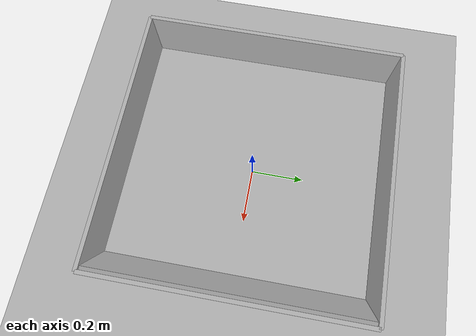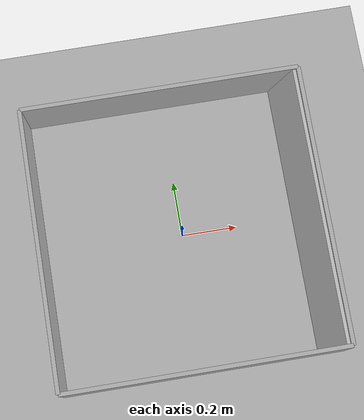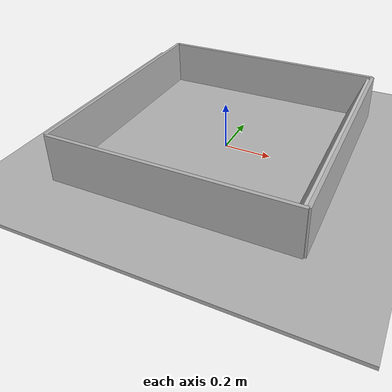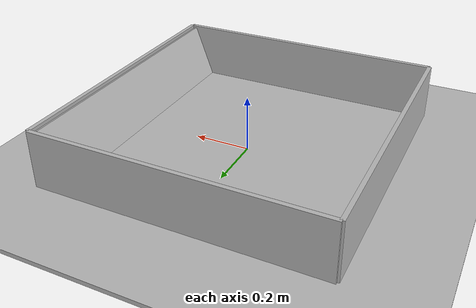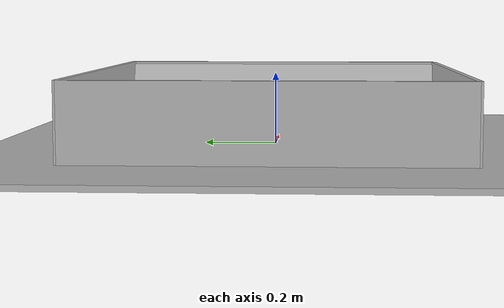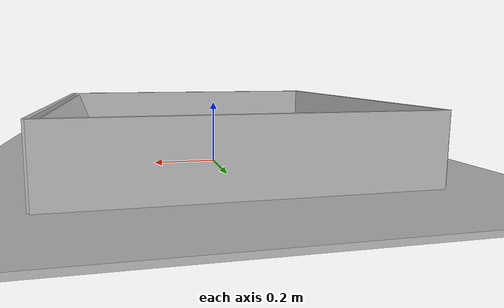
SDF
<?xml version="1.0"?>
<sdf version="1.7">
  <model name="Bin">
    <!--
    Axes:
      +X - Pointing towards front (slope)
      +Y - Pointing to left side
      +Z - Up
    Origin:
      (0, 0, 0) at the center bottom of the bin
    -->
    <link name="Bin">
      <inertial>
        <mass>18.70</mass>
        <inertia>
          <ixx>0.79</ixx>
          <ixy>0</ixy>
          <ixz>0</ixz>
          <iyy>0.53</iyy>
          <iyz>0</iyz>
          <izz>1.2</izz>
        </inertia>
      </inertial>
      <visual name="front">
        <pose>0.5 0 0.105 0 0 0</pose>
        <geometry>
          <box>
            <size>0.015 1 0.21</size>
          </box>
        </geometry>
      </visual>
      <collision name="front">
        <pose>0.5 0 0.105 0 0 0</pose>
        <geometry>
          <box>
            <size>0.015 1 0.21</size>
          </box>
        </geometry>
        <drake:proximity_properties>
          <drake:compliant_hydroelastic/>
          <drake:hydroelastic_modulus> 3.0e6 </drake:hydroelastic_modulus>
          <drake:mesh_resolution_hint> 1 </drake:mesh_resolution_hint>
          <drake:mu_dynamic> 0.3 </drake:mu_dynamic>
          <drake:mu_static> 0.3 </drake:mu_static>
          <drake:hunt_crossley_dissipation>
            3.0
          </drake:hunt_crossley_dissipation>
        </drake:proximity_properties>
      </collision>
      <visual name="slope">
        <pose>0.45 0 0.102 0 0.35 0</pose>
        <geometry>
          <box>
            <size>0.015 1 0.21</size>
          </box>
        </geometry>
      </visual>
      <collision name="slope">
        <pose>0.45 0 0.102 0 0.35 0</pose>
        <geometry>
          <box>
            <size>0.015 1 0.21</size>
          </box>
        </geometry>
        <drake:proximity_properties>
          <drake:compliant_hydroelastic/>
          <drake:hydroelastic_modulus> 3.0e6 </drake:hydroelastic_modulus>
          <drake:mesh_resolution_hint> 1 </drake:mesh_resolution_hint>
          <drake:mu_dynamic> 0.3 </drake:mu_dynamic>
          <drake:mu_static> 0.3 </drake:mu_static>
          <drake:hunt_crossley_dissipation>
            3.0
          </drake:hunt_crossley_dissipation>
        </drake:proximity_properties>
      </collision>
      <visual name="back">
        <pose>-0.5 0 0.105 0 0 0</pose>
        <geometry>
          <box>
            <size>0.015 1 0.21</size>
          </box>
        </geometry>
      </visual>
      <collision name="back">
        <pose>-0.5 0 0.105 0 0 0</pose>
        <geometry>
          <box>
            <size>0.015 1 0.21</size>
          </box>
        </geometry>
        <drake:proximity_properties>
          <drake:compliant_hydroelastic/>
          <drake:hydroelastic_modulus> 3.0e6 </drake:hydroelastic_modulus>
          <drake:mesh_resolution_hint> 1 </drake:mesh_resolution_hint>
          <drake:mu_dynamic> 0.3 </drake:mu_dynamic>
          <drake:mu_static> 0.3 </drake:mu_static>
          <drake:hunt_crossley_dissipation>
            3.0
          </drake:hunt_crossley_dissipation>
        </drake:proximity_properties>
      </collision>
      <visual name="left">
        <pose>0.0 0.5 0.105 0 0 0</pose>
        <geometry>
          <box>
            <size>1 0.015 0.21</size>
          </box>
        </geometry>
      </visual>
      <collision name="left">
        <pose>0.0 0.5 0.105 0 0 0</pose>
        <geometry>
          <box>
            <size>1 0.015 0.21</size>
          </box>
        </geometry>
        <drake:proximity_properties>
          <drake:compliant_hydroelastic/>
          <drake:hydroelastic_modulus> 3.0e6 </drake:hydroelastic_modulus>
          <drake:mesh_resolution_hint> 1 </drake:mesh_resolution_hint>
          <drake:mu_dynamic> 0.3 </drake:mu_dynamic>
          <drake:mu_static> 0.3 </drake:mu_static>
          <drake:hunt_crossley_dissipation>
            3.0
          </drake:hunt_crossley_dissipation>
        </drake:proximity_properties>
      </collision>
      <visual name="right">
        <pose>0.0 -0.5 0.105 0 0 0</pose>
        <geometry>
          <box>
            <size>1 0.015 0.21</size>
          </box>
        </geometry>
      </visual>
      <collision name="right">
        <pose>0.0 -0.5 0.105 0 0 0</pose>
        <geometry>
          <box>
            <size>1 0.015 0.21</size>
          </box>
        </geometry>
        <drake:proximity_properties>
          <drake:compliant_hydroelastic/>
          <drake:hydroelastic_modulus> 3.0e6 </drake:hydroelastic_modulus>
          <drake:mesh_resolution_hint> 1 </drake:mesh_resolution_hint>
          <drake:mu_dynamic> 0.3 </drake:mu_dynamic>
          <drake:mu_static> 0.3 </drake:mu_static>
          <drake:hunt_crossley_dissipation>
            3.0
          </drake:hunt_crossley_dissipation>
        </drake:proximity_properties>
      </collision>
      <visual name="bottom">
        <pose>0.0 0.0 0 0 0 0</pose>
        <geometry>
          <box>
            <size>10 10 0.015</size>
          </box>
        </geometry>
      </visual>
      <collision name="bottom">
        <pose>0.0 0.0 0 0 0 0</pose>
        <geometry>
          <box>
            <size>10 10 0.015</size>
          </box>
        </geometry>
        <drake:proximity_properties>
          <drake:compliant_hydroelastic/>
          <drake:hydroelastic_modulus> 3.0e6 </drake:hydroelastic_modulus>
          <drake:mesh_resolution_hint> 1 </drake:mesh_resolution_hint>
          <drake:mu_dynamic> 0.3 </drake:mu_dynamic>
          <drake:mu_static> 0.3 </drake:mu_static>
          <drake:hunt_crossley_dissipation>
            3.0
          </drake:hunt_crossley_dissipation>
        </drake:proximity_properties>
      </collision>
    </link>
    <frame name="bin_front_top_center">
      <pose relative_to="Bin">0.22 0 0.21 0 0 0</pose>
    </frame>
  </model>
</sdf>
